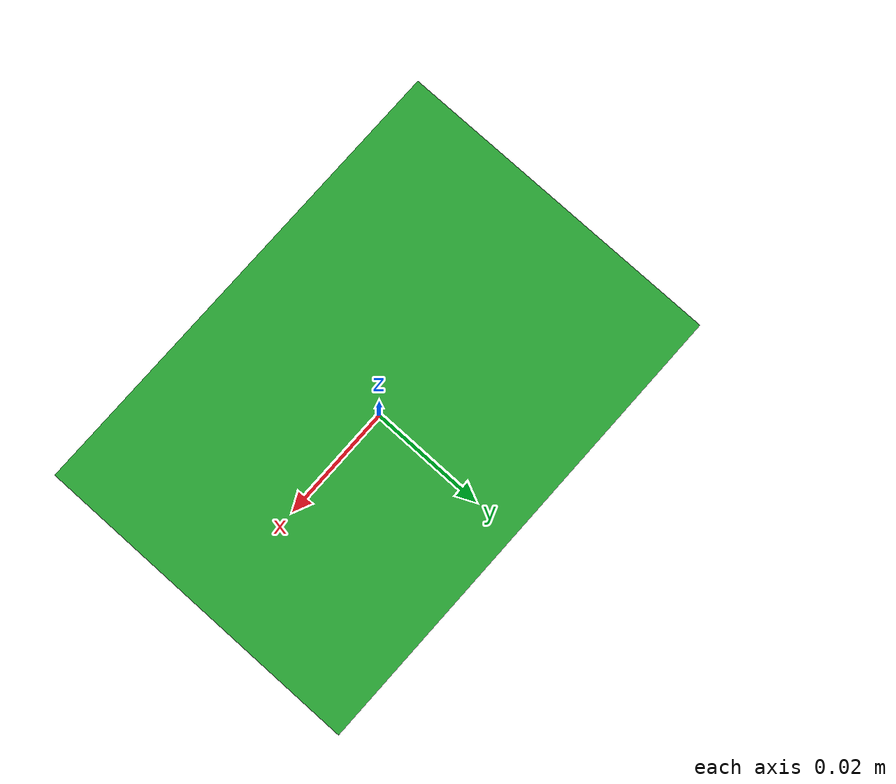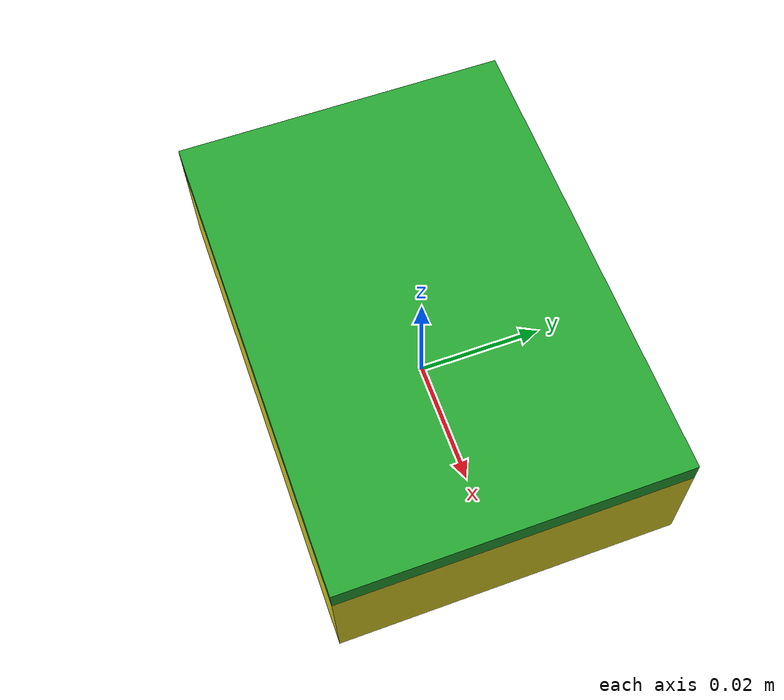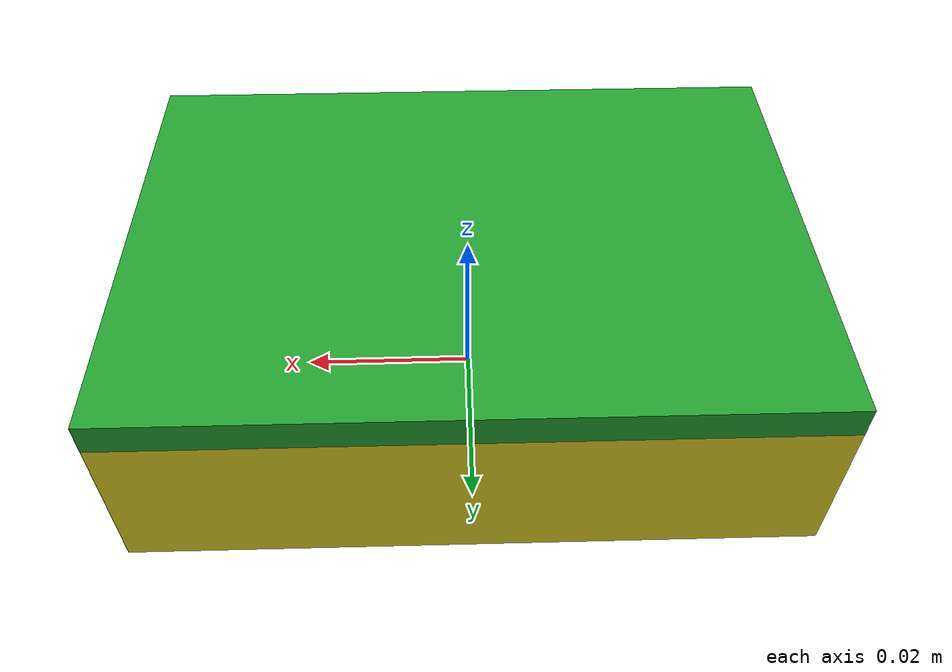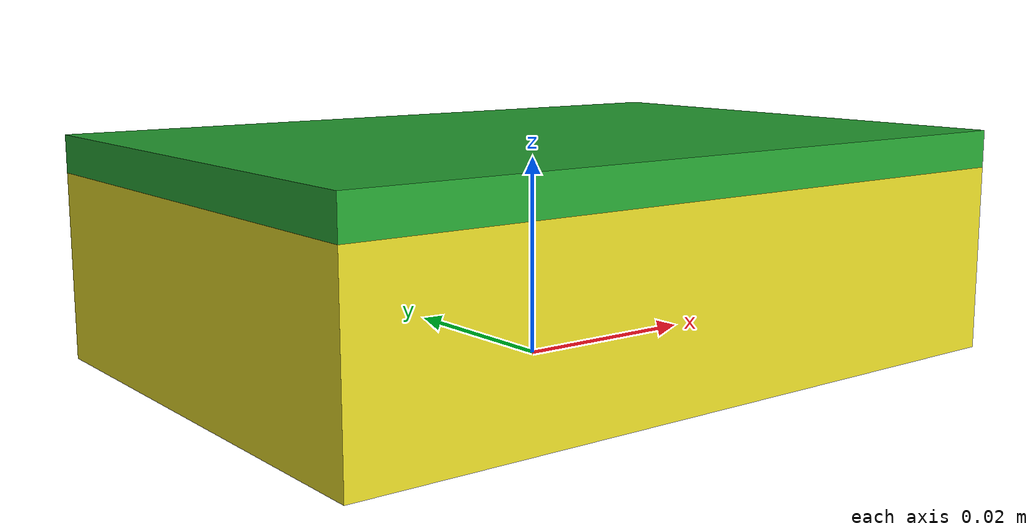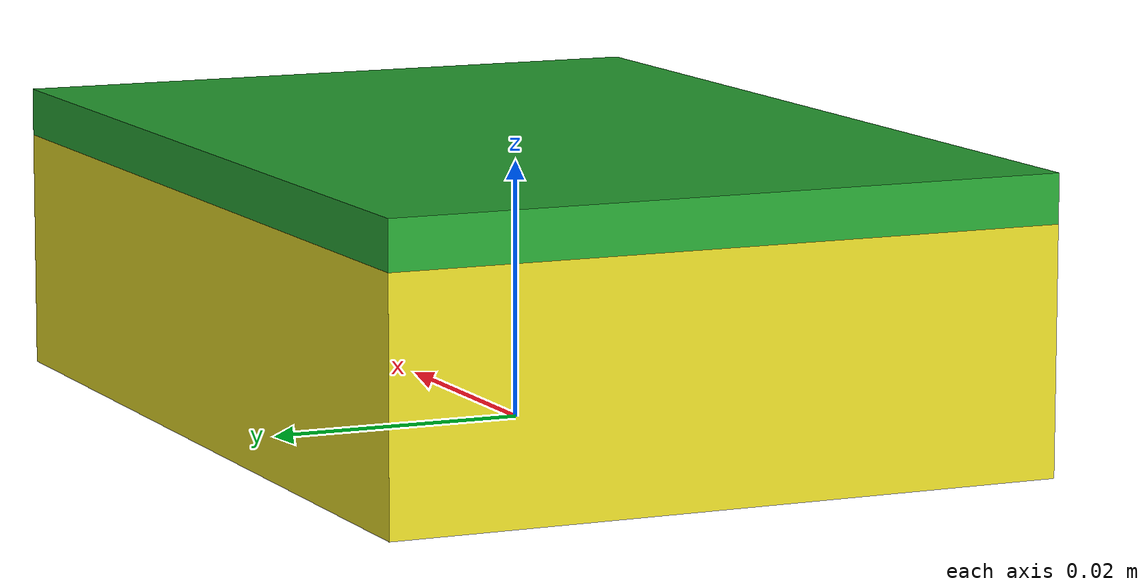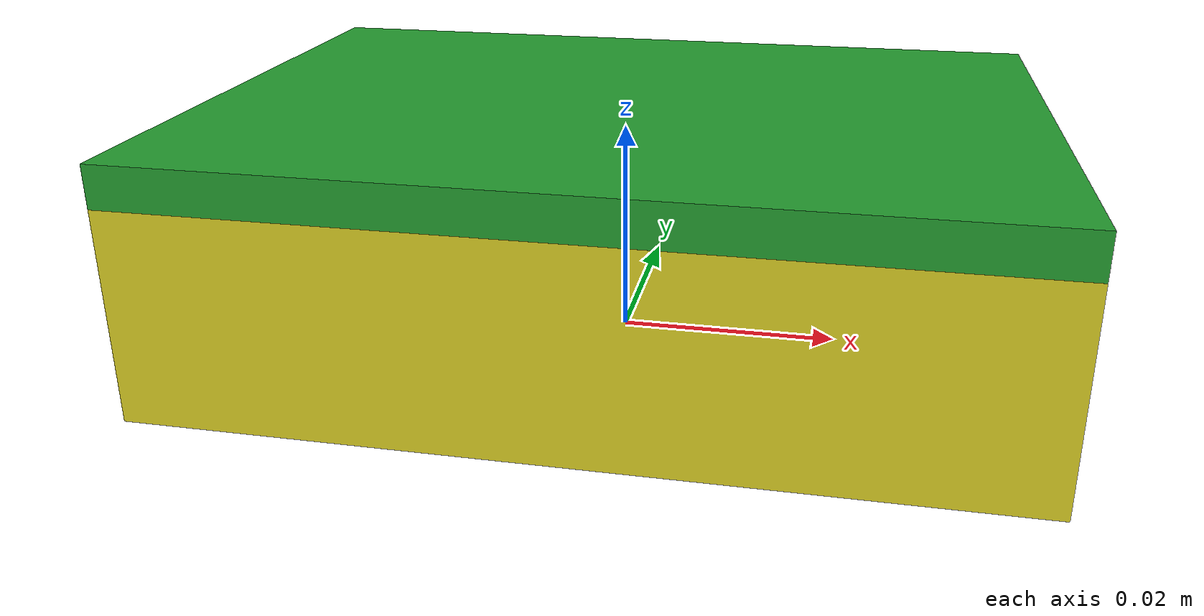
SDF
<?xml version="1.0" ?>
<sdf version="1.6">
  <model name="sponge">
    <static>false</static>

    <link name="base_link">

      <!--
        Scaled sponge model.
        Original size: 0.10 x 0.07 x 0.03 m
        New size:      0.075 x 0.0525 x 0.0225 m

        Stabilized with exaggerated mass/inertia/friction.
      -->

      <inertial>
        <pose>0 0 0.01125 0 0 0</pose>
        <mass>0.20</mass>
        <inertia>
          <ixx>0.000163</ixx>
          <ixy>0.0</ixy>
          <ixz>0.0</ixz>
          <iyy>0.000307</iyy>
          <iyz>0.0</iyz>
          <izz>0.000419</izz>
        </inertia>
      </inertial>

      <velocity_decay>
        <linear>0.0</linear>
        <angular>0.0</angular>
      </velocity_decay>

      <collision name="collision_sponge">
        <pose>0 0 0.01125 0 0 0</pose>
        <geometry>
          <box>
            <size>0.075 0.0525 0.0225</size>
          </box>
        </geometry>

        <surface>
          <friction>
            <ode>
              <mu>2.5</mu>
              <mu2>2.5</mu2>
            </ode>
          </friction>

          <contact>
            <ode>
              <kp>80000.0</kp>
              <kd>25.0</kd>
              <max_vel>0.05</max_vel>
              <min_depth>0.001</min_depth>
            </ode>
          </contact>
        </surface>
      </collision>

      <visual name="visual_yellow">
        <pose>0 0 0.009375 0 0 0</pose>
        <geometry>
          <box>
            <size>0.075 0.0525 0.01875</size>
          </box>
        </geometry>
        <material>
          <script>
            <uri>file://media/materials/scripts/gazebo.material</uri>
            <name>Gazebo/Yellow</name>
          </script>
        </material>
      </visual>

      <visual name="visual_green">
        <pose>0 0 0.020625 0 0 0</pose>
        <geometry>
          <box>
            <size>0.075 0.0525 0.00375</size>
          </box>
        </geometry>
        <material>
          <script>
            <uri>file://media/materials/scripts/gazebo.material</uri>
            <name>Gazebo/Green</name>
          </script>
        </material>
      </visual>

    </link>
  </model>
</sdf>
